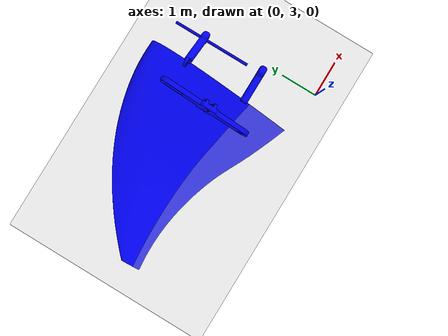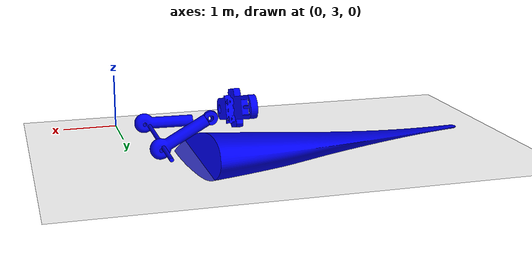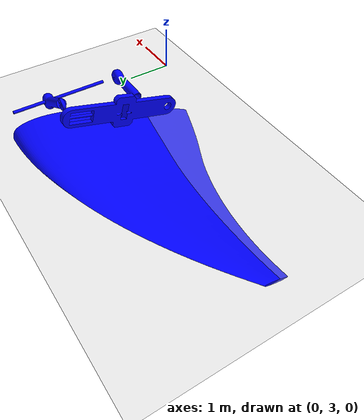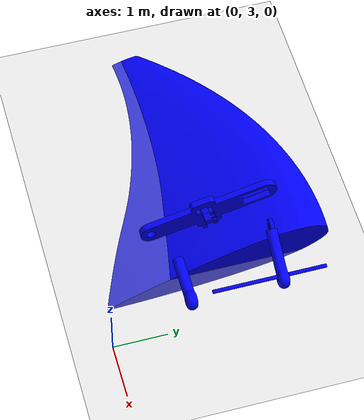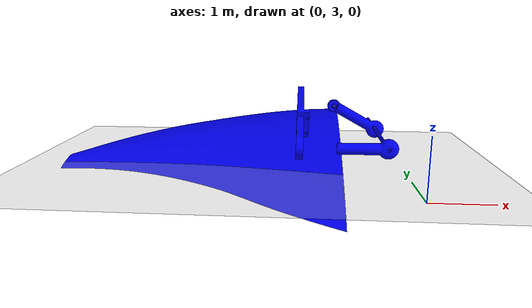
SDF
<?xml version="1.0"?>
<sdf version="1.8">

  <world name="fin_world">
    <physics name="1ms" type="ignored">
      <max_step_size>0.001</max_step_size>
      <real_time_factor>1.0</real_time_factor>
    </physics>
    <plugin
      filename="libignition-gazebo-physics-system.so"
      name="ignition::gazebo::systems::Physics">
    </plugin>
    <plugin
      filename="libignition-gazebo-user-commands-system.so"
      name="ignition::gazebo::systems::UserCommands">
    </plugin>
    <plugin
      filename="libignition-gazebo-scene-broadcaster-system.so"
      name="ignition::gazebo::systems::SceneBroadcaster">
    </plugin>

    <light type="directional" name="sun">
      <cast_shadows>true</cast_shadows>
      <pose>0 0 10 0 0 0</pose>
      <diffuse>0.8 0.8 0.8 1</diffuse>
      <specular>0.2 0.2 0.2 1</specular>
      <attenuation>
        <range>1000</range>
        <constant>0.9</constant>
        <linear>0.01</linear>
        <quadratic>0.001</quadratic>
      </attenuation>
      <direction>-0.5 0.1 -0.9</direction>
    </light>

    <model name="ground_plane">
      <static>true</static>
      <link name="link">
        <collision name="collision">
          <geometry>
            <plane>
              <normal>0 0 1</normal>
            </plane>
          </geometry>
        </collision>
        <visual name="visual">
          <geometry>
            <plane>
              <normal>0 0 1</normal>
              <size>100 100</size>
            </plane>
          </geometry>
          <material>
            <ambient>0.8 0.8 0.8 1</ambient>
            <diffuse>0.8 0.8 0.8 1</diffuse>
            <specular>0.8 0.8 0.8 1</specular>
          </material>
        </visual>
      </link>
    </model>

    <model name="fin_mechanism">

      <pose relative_to='world'>0 0 0 0 0 0</pose>

      <link name="base_link">

        <pose>0 0 0 0 0 0</pose>

        <inertial>
          <mass>0.008</mass>
          <inertia>
            <ixx>0.0028999008</ixx>
            <ixy>1.43715286e-08</ixy>
            <ixz>3.086010e-11</ixz>
            <iyy>4.69018906e-06</iyy>
            <iyz>-2.560048828e-06</iyz>
            <izz>0.002899883</izz>
          </inertia>
        </inertial>

        <visual name="base_link_visual">
          <geometry>
            <mesh>
              <uri>meshes/base_link.stl</uri>
              <scale>0.01 0.01 0.01</scale>
            </mesh>
          </geometry>
          <material>
            <ambient>0.0 0.0 1.0 1</ambient>
            <diffuse>0.0 0.0 1.0 1</diffuse>
            <specular>0.0 0.0 1.0 1</specular>
          </material>
        </visual>

        <collision name="base_link_collision">
          <geometry>
            <mesh>
              <scale>0.001 0.001 0.001</scale>
              <uri>meshes/base_link.stl</uri>
            </mesh>
          </geometry>
        </collision>

      </link>

      <link name="input_bar_1">

        <pose>0.036031 -0.701385 -0.047096 0 0 0</pose>

        <inertial>
          <mass>0.04</mass>
          <inertia>
            <ixx>0.0010981736</ixx>
            <ixy>-1.5086196289e-06</ixy>
            <ixz>0.0014820546</ixz>
            <iyy>0.0038157212</iyy>
            <iyz>7.736248535e-07</iyz>
            <izz>0.0029214714</izz>
          </inertia>
        </inertial>

        <visual name="input_bar_1_visual">
          <geometry>
            <mesh>
              <scale>0.01 0.01 0.01</scale>
              <uri>meshes/input_bar_1_1.stl</uri>
            </mesh>
          </geometry>
          <material>
            <ambient>0.0 0.0 1.0 1</ambient>
            <diffuse>0.0 0.0 1.0 1</diffuse>
            <specular>0.0 0.0 1.0 1</specular>
          </material>
        </visual>

        <collision name="input_bar_1_collision">
          <geometry>
            <mesh>
              <scale>0.001 0.001 0.001</scale>
              <uri>meshes/input_bar_1_1.stl</uri>
            </mesh>
          </geometry>
        </collision>

      </link>

      <link name="hook_to_slider">

        <pose>0.114813 -0.690346 -0.090603 0 0 0</pose>

        <inertial>
          <mass>0.03036</mass>
          <inertia>
            <ixx>3.689685e-05</ixx>
            <ixy>1.294863e-08</ixy>
            <ixz>4.085262e-05</ixz>
            <iyy>1.205141e-04</iyy>
            <iyz>2.455685e-08</iyz>
            <izz>8.702948e-05</izz>
          </inertia>
        </inertial>

        <visual name="hook_to_slider_visual">
          <geometry>
            <mesh>
              <scale>0.01 0.01 0.01</scale>
              <uri>meshes/hook_to_slider_1.stl</uri>
            </mesh>
          </geometry>
          <material>
            <ambient>0.0 0.0 1.0 1</ambient>
            <diffuse>0.0 0.0 1.0 1</diffuse>
            <specular>0.0 0.0 1.0 1</specular>
          </material>
        </visual>

        <collision name="hook_to_slider_collision">
          <geometry>
            <mesh>
              <scale>0.001 0.001 0.001</scale>
              <uri>meshes/hook_to_slider_1.stl</uri>
            </mesh>
          </geometry>
        </collision>

      </link>

      <link name="input_bar_2">

        <pose>0.03603 -0.491385 -0.04691 0 0 0</pose>

        <inertial>
          <mass>0.046</mass>
          <inertia>
            <ixx>2.92583525e-04</ixx>
            <ixy>-1.2548392e-07</ixy>
            <ixz>1.08099488e-04</ixz>
            <iyy>0.0052815956</iyy>
            <iyz>6.40648987e-08</iyz>
            <izz>0.005215771</izz>
          </inertia>
        </inertial>

        <visual name="input_bar_2_visual">
          <geometry>
            <mesh>
              <scale>0.01 0.01 0.01</scale>
              <uri>meshes/input_bar_2_1.stl</uri>
            </mesh>
          </geometry>
          <material>
            <ambient>0.0 0.0 1.0 1</ambient>
            <diffuse>0.0 0.0 1.0 1</diffuse>
            <specular>0.0 0.0 1.0 1</specular>
          </material>
        </visual>

        <collision name="input_bar_2_collision">
          <geometry>
            <mesh>
              <scale>0.001 0.001 0.001</scale>
              <uri>meshes/input_bar_2_1.stl</uri>
            </mesh>
          </geometry>
        </collision>

      </link>

      <link name="ball_slider">

        <pose>0.128874 -0.690339 -0.098472 0 0 0</pose>

        <inertial>
          <mass>0.0005</mass>
          <inertia>
            <ixx>7.937935e-07</ixx>
            <ixy>-1.889823e-10</ixy>
            <ixz>4.325785e-10</ixz>
            <iyy>1.0917079e-06</iyy>
            <iyz>7.62782043e-08</iyz>
            <izz>8.1397056e-07</izz>
          </inertia>
        </inertial>

        <visual name="ball_slider_visual">
          <geometry>
            <mesh>
              <scale>0.01 0.01 0.01</scale>
              <uri>meshes/ball_slider_1.stl</uri>
            </mesh>
          </geometry>
          <material>
            <ambient>0.0 0.0 1.0 1</ambient>
            <diffuse>0.0 0.0 1.0 1</diffuse>
            <specular>0.0 0.0 1.0 1</specular>
          </material>
        </visual>

        <collision name="ball_slider_collision">
          <geometry>
            <mesh>
              <scale>0.001 0.001 0.001</scale>
              <uri>meshes/ball_slider_1.stl</uri>
            </mesh>
          </geometry>
        </collision>

      </link>

      <link name="attatchment">

        <pose>-0.563346 -0.819442 0.016787 0 0 0</pose>

        <inertial>
          <mass>0.124</mass>
          <inertia>
            <ixx>0.0503414464</ixx>
            <ixy>-2.51359325e-04</ixy>
            <ixz>-1.0930119e-04</ixz>
            <iyy>0.005684428</iyy>
            <iyz>-0.0110974984</iyz>
            <izz>0.0450456256</izz>
          </inertia>
        </inertial>

        <visual name="attatchment_visual">
          <geometry>
            <mesh>
              <scale>0.01 0.01 0.01</scale>
              <uri>meshes/attatchment_1.stl</uri>
            </mesh>
          </geometry>
          <material>
            <ambient>0.0 0.0 1.0 1</ambient>
            <diffuse>0.0 0.0 1.0 1</diffuse>
            <specular>0.0 0.0 1.0 1</specular>
          </material>
        </visual>

        <collision name="attatchment_collision">
          <geometry>
            <mesh>
              <scale>0.001 0.001 0.001</scale>
              <uri>meshes/attatchment_1.stl</uri>
            </mesh>
          </geometry>
        </collision>

      </link>

      <link name="fin">

        <pose>0.257843 -0.359279 -0.611252 0 0 0</pose>

        <inertial>
          <mass>6.3</mass>
          <inertia>
            <ixx>3.0110726144</ixx>
            <ixy>-0.1290816896</ixy>
            <ixz>0.080053376</ixz>
            <iyy>4.4995039232</iyy>
            <iyz>-0.6807791</iyz>
            <izz>6.9837668352</izz>
          </inertia>
        </inertial>

        <visual name="fin_visual">
          <geometry>
            <mesh>
              <scale>0.01 0.01 0.01</scale>
              <uri>meshes/fin_1.stl</uri>
            </mesh>
          </geometry>
          <material>
            <ambient>0.0 0.0 1.0 1</ambient>
            <diffuse>0.0 0.0 1.0 1</diffuse>
            <specular>0.0 0.0 1.0 1</specular>
          </material>
        </visual>

        <collision name="fin_collision">
          <geometry>
            <mesh>
              <scale>0.001 0.001 0.001</scale>
              <uri>meshes/fin_1.stl</uri>
            </mesh>
          </geometry>
        </collision>

      </link>

      <joint name="revolucion1" type="continuous">
        <parent>base_link</parent>
        <child>input_bar_1</child>
        <pose>-0.036031 0.701385 0.047096 0 0 0</pose>
        <axis>
          <xyz>-5e-06 1.0 0.000884</xyz>
        </axis>
      </joint>

      <joint name="input1_to_hook" type="prismatic">
        <parent>input_bar_1</parent>
        <child>hook_to_slider</child>
        <pose>-0.078782 -0.011039 0.043507 0 0 0</pose>
        <axis>
          <xyz>0.872637 0.000436 -0.488369</xyz>
        </axis>
        <limit>
          <upper>0.0185</upper>
          <lower>-0.018</lower>
        </limit>
      </joint>

      <joint name="revolucion2" type="continuous">
        <parent>base_link</parent>
        <child>input_bar_2</child>
        <pose>-0.03603 0.491385 0.04691 0 0 0</pose>
        <axis>
          <xyz>5e-06 -1.0 -0.000884</xyz>
        </axis>
      </joint>

      <joint name="input2_to_attatchment" type="prismatic">
        <parent>input_bar_2</parent>
        <child>attatchment</child>
        <pose>0.599376 0.328057 -0.063697 0 0 0</pose>
        <axis>
          <xyz>-0.999735 -2.5e-05 0.023002</xyz>
        </axis>
        <limit>
          <upper>0.0185</upper>
          <lower>-0.018</lower>
        </limit>
        <!-- effort="100" velocity="100" -->
      </joint>

      <joint name="spherical_joint" type="ball">
        <parent>hook_to_slider</parent>
        <child>ball_slider</child>
        <pose>-0.014061 -7e-06 0.007869 0 0 0</pose>
        <axis>
          <xyz>-0.00582 -0.967179 -0.254029</xyz>
        </axis>
      </joint>

      <joint name="ball_slider_joint" type="prismatic">
        <parent>ball_slider</parent>
        <child>attatchment</child>
        <pose>0.69222 0.129103 -0.115259 0 0 0</pose>
        <axis>
          <xyz>-0.00582 -0.967179 -0.254029</xyz>
        </axis>
        <limit>
          <upper>1.0</upper>
          <lower>-1.0</lower>
        </limit>
        <!-- effort="100" velocity="100" -->
      </joint>

      <joint name="fin_attatchment" type="fixed">
        <parent>attatchment</parent>
        <child>fin</child>
        <pose>-0.821189 -0.460163 0.628039 0 0 0</pose>
        <axis>
          <xyz>-0.999735 -2.5e-05 0.023002</xyz>
        </axis>
      </joint>

    </model>
  </world>
</sdf>
